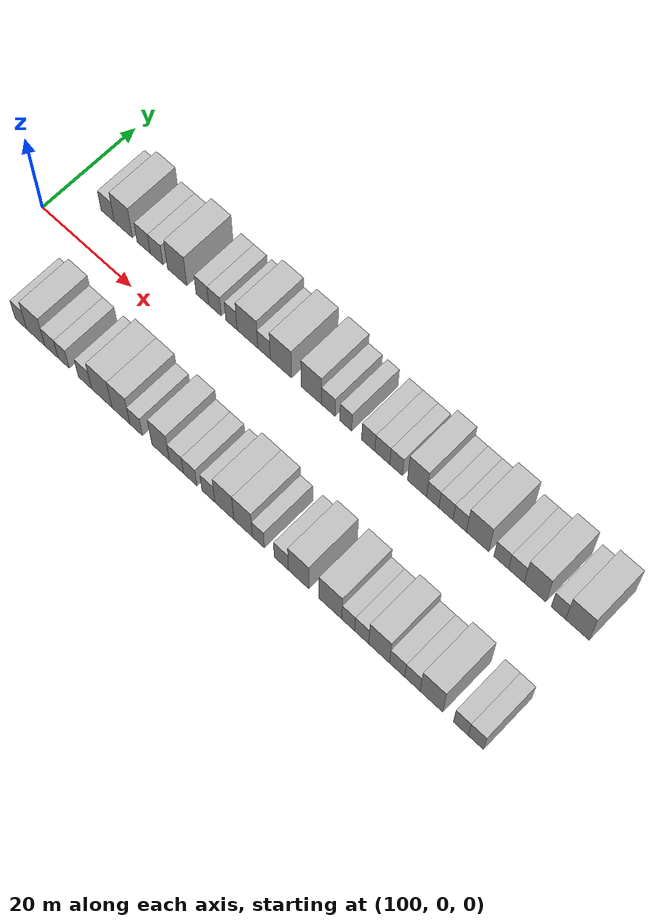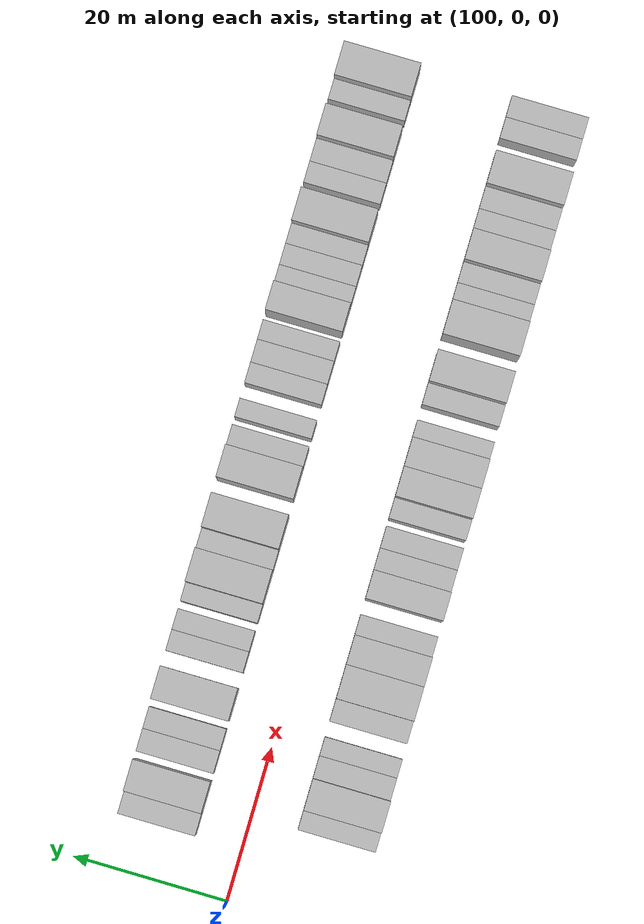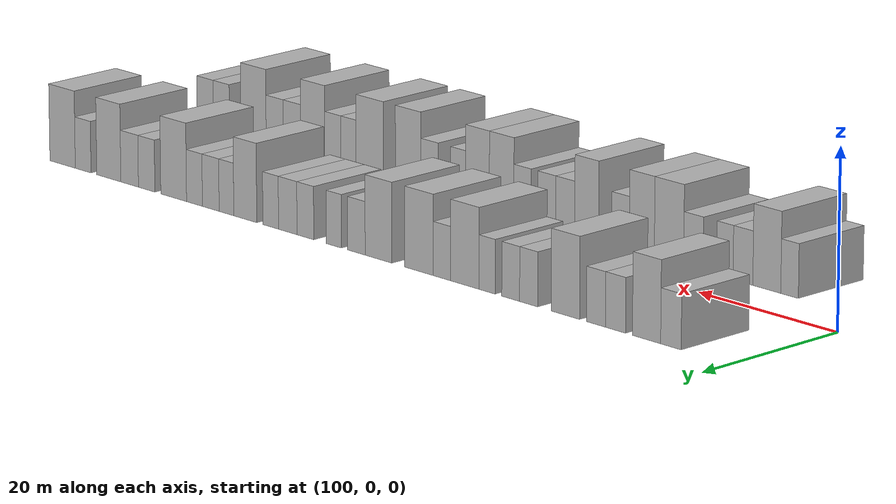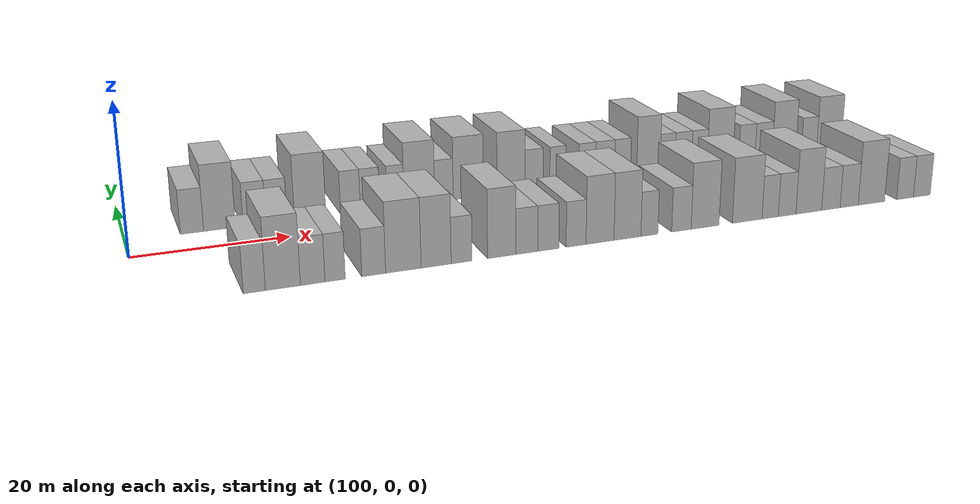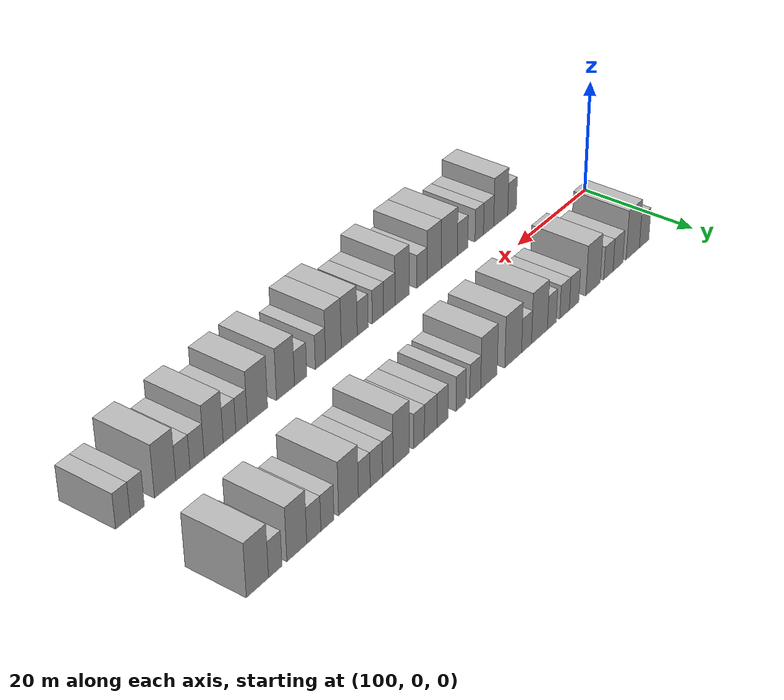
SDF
<sdf version="1.6">
 <world name="default">
  <model name="building_27">
   <static>1</static>
   <pose>108.4140 11.0000 0 0.000000 0.000000 1.570796</pose>
   <link name="link">
    <pose>0 0 3.00 0 0 0</pose>
    <collision name="collision"><geometry><box><size>10.0000 2.9504 6.0000</size></box></geometry></collision>
    <visual name="visual">
     <cast_shadows>0</cast_shadows>
     <geometry><box><size>10.0000 2.9504 6.0000</size></box></geometry>
     <material>
      <script>
       <uri>model://HANNAS_wall/materials/scripts</uri>
       <uri>model://HANNAS_wall/materials/textures</uri>
       <name>vrc/HANNAS_wall</name>
      </script>
     </material>
    </visual>
   </link>
  </model>
  <model name="building_28">
   <static>1</static>
   <pose>111.9314 11.0000 0 0.000000 0.000000 1.570796</pose>
   <link name="link">
    <pose>0 0 4.50 0 0 0</pose>
    <collision name="collision"><geometry><box><size>10.0000 4.0844 9.0000</size></box></geometry></collision>
    <visual name="visual">
     <cast_shadows>0</cast_shadows>
     <geometry><box><size>10.0000 4.0844 9.0000</size></box></geometry>
     <material>
      <script>
       <uri>model://HANNAS_wall/materials/scripts</uri>
       <uri>model://HANNAS_wall/materials/textures</uri>
       <name>vrc/HANNAS_wall</name>
      </script>
     </material>
    </visual>
   </link>
  </model>
  <model name="building_29">
   <static>1</static>
   <pose>116.4413 11.0000 0 0.000000 0.000000 1.570796</pose>
   <link name="link">
    <pose>0 0 3.00 0 0 0</pose>
    <collision name="collision"><geometry><box><size>10.0000 2.9353 6.0000</size></box></geometry></collision>
    <visual name="visual">
     <cast_shadows>0</cast_shadows>
     <geometry><box><size>10.0000 2.9353 6.0000</size></box></geometry>
     <material>
      <script>
       <uri>model://HANNAS_wall/materials/scripts</uri>
       <uri>model://HANNAS_wall/materials/textures</uri>
       <name>vrc/HANNAS_wall</name>
      </script>
     </material>
    </visual>
   </link>
  </model>
  <model name="building_30">
   <static>1</static>
   <pose>119.3154 11.0000 0 0.000000 0.000000 1.570796</pose>
   <link name="link">
    <pose>0 0 3.00 0 0 0</pose>
    <collision name="collision"><geometry><box><size>10.0000 2.8128 6.0000</size></box></geometry></collision>
    <visual name="visual">
     <cast_shadows>0</cast_shadows>
     <geometry><box><size>10.0000 2.8128 6.0000</size></box></geometry>
     <material>
      <script>
       <uri>model://HANNAS_wall/materials/scripts</uri>
       <uri>model://HANNAS_wall/materials/textures</uri>
       <name>vrc/HANNAS_wall</name>
      </script>
     </material>
    </visual>
   </link>
  </model>
  <model name="building_31">
   <static>1</static>
   <pose>123.8374 11.0000 0 0.000000 0.000000 1.570796</pose>
   <link name="link">
    <pose>0 0 4.50 0 0 0</pose>
    <collision name="collision"><geometry><box><size>10.0000 4.2310 9.0000</size></box></geometry></collision>
    <visual name="visual">
     <cast_shadows>0</cast_shadows>
     <geometry><box><size>10.0000 4.2310 9.0000</size></box></geometry>
     <material>
      <script>
       <uri>model://HANNAS_wall/materials/scripts</uri>
       <uri>model://HANNAS_wall/materials/textures</uri>
       <name>vrc/HANNAS_wall</name>
      </script>
     </material>
    </visual>
   </link>
  </model>
  <model name="building_32">
   <static>1</static>
   <pose>129.3143 11.0000 0 0.000000 0.000000 1.570796</pose>
   <link name="link">
    <pose>0 0 3.00 0 0 0</pose>
    <collision name="collision"><geometry><box><size>10.0000 2.7228 6.0000</size></box></geometry></collision>
    <visual name="visual">
     <cast_shadows>0</cast_shadows>
     <geometry><box><size>10.0000 2.7228 6.0000</size></box></geometry>
     <material>
      <script>
       <uri>model://HANNAS_wall/materials/scripts</uri>
       <uri>model://HANNAS_wall/materials/textures</uri>
       <name>vrc/HANNAS_wall</name>
      </script>
     </material>
    </visual>
   </link>
  </model>
  <model name="building_33">
   <static>1</static>
   <pose>132.0238 11.0000 0 0.000000 0.000000 1.570796</pose>
   <link name="link">
    <pose>0 0 3.00 0 0 0</pose>
    <collision name="collision"><geometry><box><size>10.0000 2.6963 6.0000</size></box></geometry></collision>
    <visual name="visual">
     <cast_shadows>0</cast_shadows>
     <geometry><box><size>10.0000 2.6963 6.0000</size></box></geometry>
     <material>
      <script>
       <uri>model://HANNAS_wall/materials/scripts</uri>
       <uri>model://HANNAS_wall/materials/textures</uri>
       <name>vrc/HANNAS_wall</name>
      </script>
     </material>
    </visual>
   </link>
  </model>
  <model name="building_34">
   <static>1</static>
   <pose>135.5827 11.0000 0 0.000000 0.000000 1.570796</pose>
   <link name="link">
    <pose>0 0 3.00 0 0 0</pose>
    <collision name="collision"><geometry><box><size>10.0000 2.4214 6.0000</size></box></geometry></collision>
    <visual name="visual">
     <cast_shadows>0</cast_shadows>
     <geometry><box><size>10.0000 2.4214 6.0000</size></box></geometry>
     <material>
      <script>
       <uri>model://HANNAS_wall/materials/scripts</uri>
       <uri>model://HANNAS_wall/materials/textures</uri>
       <name>vrc/HANNAS_wall</name>
      </script>
     </material>
    </visual>
   </link>
  </model>
  <model name="building_35">
   <static>1</static>
   <pose>138.9774 11.0000 0 0.000000 0.000000 1.570796</pose>
   <link name="link">
    <pose>0 0 4.50 0 0 0</pose>
    <collision name="collision"><geometry><box><size>10.0000 4.3680 9.0000</size></box></geometry></collision>
    <visual name="visual">
     <cast_shadows>0</cast_shadows>
     <geometry><box><size>10.0000 4.3680 9.0000</size></box></geometry>
     <material>
      <script>
       <uri>model://HANNAS_wall/materials/scripts</uri>
       <uri>model://HANNAS_wall/materials/textures</uri>
       <name>vrc/HANNAS_wall</name>
      </script>
     </material>
    </visual>
   </link>
  </model>
  <model name="building_36">
   <static>1</static>
   <pose>142.4994 11.0000 0 0.000000 0.000000 1.570796</pose>
   <link name="link">
    <pose>0 0 3.00 0 0 0</pose>
    <collision name="collision"><geometry><box><size>10.0000 2.6760 6.0000</size></box></geometry></collision>
    <visual name="visual">
     <cast_shadows>0</cast_shadows>
     <geometry><box><size>10.0000 2.6760 6.0000</size></box></geometry>
     <material>
      <script>
       <uri>model://HANNAS_wall/materials/scripts</uri>
       <uri>model://HANNAS_wall/materials/textures</uri>
       <name>vrc/HANNAS_wall</name>
      </script>
     </material>
    </visual>
   </link>
  </model>
  <model name="building_37">
   <static>1</static>
   <pose>146.0599 11.0000 0 0.000000 0.000000 1.570796</pose>
   <link name="link">
    <pose>0 0 4.50 0 0 0</pose>
    <collision name="collision"><geometry><box><size>10.0000 4.4451 9.0000</size></box></geometry></collision>
    <visual name="visual">
     <cast_shadows>0</cast_shadows>
     <geometry><box><size>10.0000 4.4451 9.0000</size></box></geometry>
     <material>
      <script>
       <uri>model://HANNAS_wall/materials/scripts</uri>
       <uri>model://HANNAS_wall/materials/textures</uri>
       <name>vrc/HANNAS_wall</name>
      </script>
     </material>
    </visual>
   </link>
  </model>
  <model name="building_38">
   <static>1</static>
   <pose>152.3890 11.0000 0 0.000000 0.000000 1.570796</pose>
   <link name="link">
    <pose>0 0 4.50 0 0 0</pose>
    <collision name="collision"><geometry><box><size>10.0000 4.2130 9.0000</size></box></geometry></collision>
    <visual name="visual">
     <cast_shadows>0</cast_shadows>
     <geometry><box><size>10.0000 4.2130 9.0000</size></box></geometry>
     <material>
      <script>
       <uri>model://HANNAS_wall/materials/scripts</uri>
       <uri>model://HANNAS_wall/materials/textures</uri>
       <name>vrc/HANNAS_wall</name>
      </script>
     </material>
    </visual>
   </link>
  </model>
  <model name="building_39">
   <static>1</static>
   <pose>155.8825 11.0000 0 0.000000 0.000000 1.570796</pose>
   <link name="link">
    <pose>0 0 3.00 0 0 0</pose>
    <collision name="collision"><geometry><box><size>10.0000 2.7741 6.0000</size></box></geometry></collision>
    <visual name="visual">
     <cast_shadows>0</cast_shadows>
     <geometry><box><size>10.0000 2.7741 6.0000</size></box></geometry>
     <material>
      <script>
       <uri>model://HANNAS_wall/materials/scripts</uri>
       <uri>model://HANNAS_wall/materials/textures</uri>
       <name>vrc/HANNAS_wall</name>
      </script>
     </material>
    </visual>
   </link>
  </model>
  <model name="building_40">
   <static>1</static>
   <pose>159.4782 11.0000 0 0.000000 0.000000 1.570796</pose>
   <link name="link">
    <pose>0 0 3.00 0 0 0</pose>
    <collision name="collision"><geometry><box><size>10.0000 2.4173 6.0000</size></box></geometry></collision>
    <visual name="visual">
     <cast_shadows>0</cast_shadows>
     <geometry><box><size>10.0000 2.4173 6.0000</size></box></geometry>
     <material>
      <script>
       <uri>model://HANNAS_wall/materials/scripts</uri>
       <uri>model://HANNAS_wall/materials/textures</uri>
       <name>vrc/HANNAS_wall</name>
      </script>
     </material>
    </visual>
   </link>
  </model>
  <model name="building_41">
   <static>1</static>
   <pose>164.0382 11.0000 0 0.000000 0.000000 1.570796</pose>
   <link name="link">
    <pose>0 0 3.00 0 0 0</pose>
    <collision name="collision"><geometry><box><size>10.0000 2.7027 6.0000</size></box></geometry></collision>
    <visual name="visual">
     <cast_shadows>0</cast_shadows>
     <geometry><box><size>10.0000 2.7027 6.0000</size></box></geometry>
     <material>
      <script>
       <uri>model://HANNAS_wall/materials/scripts</uri>
       <uri>model://HANNAS_wall/materials/textures</uri>
       <name>vrc/HANNAS_wall</name>
      </script>
     </material>
    </visual>
   </link>
  </model>
  <model name="building_42">
   <static>1</static>
   <pose>166.8856 11.0000 0 0.000000 0.000000 1.570796</pose>
   <link name="link">
    <pose>0 0 3.00 0 0 0</pose>
    <collision name="collision"><geometry><box><size>10.0000 2.9921 6.0000</size></box></geometry></collision>
    <visual name="visual">
     <cast_shadows>0</cast_shadows>
     <geometry><box><size>10.0000 2.9921 6.0000</size></box></geometry>
     <material>
      <script>
       <uri>model://HANNAS_wall/materials/scripts</uri>
       <uri>model://HANNAS_wall/materials/textures</uri>
       <name>vrc/HANNAS_wall</name>
      </script>
     </material>
    </visual>
   </link>
  </model>
  <model name="building_43">
   <static>1</static>
   <pose>169.6561 11.0000 0 0.000000 0.000000 1.570796</pose>
   <link name="link">
    <pose>0 0 3.00 0 0 0</pose>
    <collision name="collision"><geometry><box><size>10.0000 2.5487 6.0000</size></box></geometry></collision>
    <visual name="visual">
     <cast_shadows>0</cast_shadows>
     <geometry><box><size>10.0000 2.5487 6.0000</size></box></geometry>
     <material>
      <script>
       <uri>model://HANNAS_wall/materials/scripts</uri>
       <uri>model://HANNAS_wall/materials/textures</uri>
       <name>vrc/HANNAS_wall</name>
      </script>
     </material>
    </visual>
   </link>
  </model>
  <model name="building_44">
   <static>1</static>
   <pose>173.8163 11.0000 0 0.000000 0.000000 1.570796</pose>
   <link name="link">
    <pose>0 0 4.50 0 0 0</pose>
    <collision name="collision"><geometry><box><size>10.0000 3.7718 9.0000</size></box></geometry></collision>
    <visual name="visual">
     <cast_shadows>0</cast_shadows>
     <geometry><box><size>10.0000 3.7718 9.0000</size></box></geometry>
     <material>
      <script>
       <uri>model://HANNAS_wall/materials/scripts</uri>
       <uri>model://HANNAS_wall/materials/textures</uri>
       <name>vrc/HANNAS_wall</name>
      </script>
     </material>
    </visual>
   </link>
  </model>
  <model name="building_45">
   <static>1</static>
   <pose>176.9145 11.0000 0 0.000000 0.000000 1.570796</pose>
   <link name="link">
    <pose>0 0 3.00 0 0 0</pose>
    <collision name="collision"><geometry><box><size>10.0000 2.4245 6.0000</size></box></geometry></collision>
    <visual name="visual">
     <cast_shadows>0</cast_shadows>
     <geometry><box><size>10.0000 2.4245 6.0000</size></box></geometry>
     <material>
      <script>
       <uri>model://HANNAS_wall/materials/scripts</uri>
       <uri>model://HANNAS_wall/materials/textures</uri>
       <name>vrc/HANNAS_wall</name>
      </script>
     </material>
    </visual>
   </link>
  </model>
  <model name="building_46">
   <static>1</static>
   <pose>179.5156 11.0000 0 0.000000 0.000000 1.570796</pose>
   <link name="link">
    <pose>0 0 3.00 0 0 0</pose>
    <collision name="collision"><geometry><box><size>10.0000 2.7777 6.0000</size></box></geometry></collision>
    <visual name="visual">
     <cast_shadows>0</cast_shadows>
     <geometry><box><size>10.0000 2.7777 6.0000</size></box></geometry>
     <material>
      <script>
       <uri>model://HANNAS_wall/materials/scripts</uri>
       <uri>model://HANNAS_wall/materials/textures</uri>
       <name>vrc/HANNAS_wall</name>
      </script>
     </material>
    </visual>
   </link>
  </model>
  <model name="building_47">
   <static>1</static>
   <pose>182.2284 11.0000 0 0.000000 0.000000 1.570796</pose>
   <link name="link">
    <pose>0 0 3.00 0 0 0</pose>
    <collision name="collision"><geometry><box><size>10.0000 2.6479 6.0000</size></box></geometry></collision>
    <visual name="visual">
     <cast_shadows>0</cast_shadows>
     <geometry><box><size>10.0000 2.6479 6.0000</size></box></geometry>
     <material>
      <script>
       <uri>model://HANNAS_wall/materials/scripts</uri>
       <uri>model://HANNAS_wall/materials/textures</uri>
       <name>vrc/HANNAS_wall</name>
      </script>
     </material>
    </visual>
   </link>
  </model>
  <model name="building_48">
   <static>1</static>
   <pose>185.7171 11.0000 0 0.000000 0.000000 1.570796</pose>
   <link name="link">
    <pose>0 0 4.50 0 0 0</pose>
    <collision name="collision"><geometry><box><size>10.0000 4.3294 9.0000</size></box></geometry></collision>
    <visual name="visual">
     <cast_shadows>0</cast_shadows>
     <geometry><box><size>10.0000 4.3294 9.0000</size></box></geometry>
     <material>
      <script>
       <uri>model://HANNAS_wall/materials/scripts</uri>
       <uri>model://HANNAS_wall/materials/textures</uri>
       <name>vrc/HANNAS_wall</name>
      </script>
     </material>
    </visual>
   </link>
  </model>
  <model name="building_49">
   <static>1</static>
   <pose>190.2763 11.0000 0 0.000000 0.000000 1.570796</pose>
   <link name="link">
    <pose>0 0 3.00 0 0 0</pose>
    <collision name="collision"><geometry><box><size>10.0000 2.7891 6.0000</size></box></geometry></collision>
    <visual name="visual">
     <cast_shadows>0</cast_shadows>
     <geometry><box><size>10.0000 2.7891 6.0000</size></box></geometry>
     <material>
      <script>
       <uri>model://HANNAS_wall/materials/scripts</uri>
       <uri>model://HANNAS_wall/materials/textures</uri>
       <name>vrc/HANNAS_wall</name>
      </script>
     </material>
    </visual>
   </link>
  </model>
  <model name="building_50">
   <static>1</static>
   <pose>193.1700 11.0000 0 0.000000 0.000000 1.570796</pose>
   <link name="link">
    <pose>0 0 3.00 0 0 0</pose>
    <collision name="collision"><geometry><box><size>10.0000 2.9982 6.0000</size></box></geometry></collision>
    <visual name="visual">
     <cast_shadows>0</cast_shadows>
     <geometry><box><size>10.0000 2.9982 6.0000</size></box></geometry>
     <material>
      <script>
       <uri>model://HANNAS_wall/materials/scripts</uri>
       <uri>model://HANNAS_wall/materials/textures</uri>
       <name>vrc/HANNAS_wall</name>
      </script>
     </material>
    </visual>
   </link>
  </model>
  <model name="building_51">
   <static>1</static>
   <pose>196.7343 11.0000 0 0.000000 0.000000 1.570796</pose>
   <link name="link">
    <pose>0 0 4.50 0 0 0</pose>
    <collision name="collision"><geometry><box><size>10.0000 4.1304 9.0000</size></box></geometry></collision>
    <visual name="visual">
     <cast_shadows>0</cast_shadows>
     <geometry><box><size>10.0000 4.1304 9.0000</size></box></geometry>
     <material>
      <script>
       <uri>model://HANNAS_wall/materials/scripts</uri>
       <uri>model://HANNAS_wall/materials/textures</uri>
       <name>vrc/HANNAS_wall</name>
      </script>
     </material>
    </visual>
   </link>
  </model>
  <model name="building_52">
   <static>1</static>
   <pose>201.1577 11.0000 0 0.000000 0.000000 1.570796</pose>
   <link name="link">
    <pose>0 0 3.00 0 0 0</pose>
    <collision name="collision"><geometry><box><size>10.0000 2.7166 6.0000</size></box></geometry></collision>
    <visual name="visual">
     <cast_shadows>0</cast_shadows>
     <geometry><box><size>10.0000 2.7166 6.0000</size></box></geometry>
     <material>
      <script>
       <uri>model://HANNAS_wall/materials/scripts</uri>
       <uri>model://HANNAS_wall/materials/textures</uri>
       <name>vrc/HANNAS_wall</name>
      </script>
     </material>
    </visual>
   </link>
  </model>
  <model name="building_53">
   <static>1</static>
   <pose>204.7273 11.0000 0 0.000000 0.000000 1.570796</pose>
   <link name="link">
    <pose>0 0 4.50 0 0 0</pose>
    <collision name="collision"><geometry><box><size>10.0000 4.4226 9.0000</size></box></geometry></collision>
    <visual name="visual">
     <cast_shadows>0</cast_shadows>
     <geometry><box><size>10.0000 4.4226 9.0000</size></box></geometry>
     <material>
      <script>
       <uri>model://HANNAS_wall/materials/scripts</uri>
       <uri>model://HANNAS_wall/materials/textures</uri>
       <name>vrc/HANNAS_wall</name>
      </script>
     </material>
    </visual>
   </link>
  </model>
  <model name="building_81">
   <static>1</static>
   <pose>112.5457 -11.0000 0 0.000000 0.000000 1.570796</pose>
   <link name="link">
    <pose>0 0 3.00 0 0 0</pose>
    <collision name="collision"><geometry><box><size>10.0000 2.5510 6.0000</size></box></geometry></collision>
    <visual name="visual">
     <cast_shadows>0</cast_shadows>
     <geometry><box><size>10.0000 2.5510 6.0000</size></box></geometry>
     <material>
      <script>
       <uri>model://HANNAS_wall/materials/scripts</uri>
       <uri>model://HANNAS_wall/materials/textures</uri>
       <name>vrc/HANNAS_wall</name>
      </script>
     </material>
    </visual>
   </link>
  </model>
  <model name="building_82">
   <static>1</static>
   <pose>115.8609 -11.0000 0 0.000000 0.000000 1.570796</pose>
   <link name="link">
    <pose>0 0 4.50 0 0 0</pose>
    <collision name="collision"><geometry><box><size>10.0000 4.0794 9.0000</size></box></geometry></collision>
    <visual name="visual">
     <cast_shadows>0</cast_shadows>
     <geometry><box><size>10.0000 4.0794 9.0000</size></box></geometry>
     <material>
      <script>
       <uri>model://HANNAS_wall/materials/scripts</uri>
       <uri>model://HANNAS_wall/materials/textures</uri>
       <name>vrc/HANNAS_wall</name>
      </script>
     </material>
    </visual>
   </link>
  </model>
  <model name="building_83">
   <static>1</static>
   <pose>119.3549 -11.0000 0 0.000000 0.000000 1.570796</pose>
   <link name="link">
    <pose>0 0 3.00 0 0 0</pose>
    <collision name="collision"><geometry><box><size>10.0000 2.9087 6.0000</size></box></geometry></collision>
    <visual name="visual">
     <cast_shadows>0</cast_shadows>
     <geometry><box><size>10.0000 2.9087 6.0000</size></box></geometry>
     <material>
      <script>
       <uri>model://HANNAS_wall/materials/scripts</uri>
       <uri>model://HANNAS_wall/materials/textures</uri>
       <name>vrc/HANNAS_wall</name>
      </script>
     </material>
    </visual>
   </link>
  </model>
  <model name="building_84">
   <static>1</static>
   <pose>122.0211 -11.0000 0 0.000000 0.000000 1.570796</pose>
   <link name="link">
    <pose>0 0 3.00 0 0 0</pose>
    <collision name="collision"><geometry><box><size>10.0000 2.4236 6.0000</size></box></geometry></collision>
    <visual name="visual">
     <cast_shadows>0</cast_shadows>
     <geometry><box><size>10.0000 2.4236 6.0000</size></box></geometry>
     <material>
      <script>
       <uri>model://HANNAS_wall/materials/scripts</uri>
       <uri>model://HANNAS_wall/materials/textures</uri>
       <name>vrc/HANNAS_wall</name>
      </script>
     </material>
    </visual>
   </link>
  </model>
  <model name="building_85">
   <static>1</static>
   <pose>126.6897 -11.0000 0 0.000000 0.000000 1.570796</pose>
   <link name="link">
    <pose>0 0 3.00 0 0 0</pose>
    <collision name="collision"><geometry><box><size>10.0000 2.9137 6.0000</size></box></geometry></collision>
    <visual name="visual">
     <cast_shadows>0</cast_shadows>
     <geometry><box><size>10.0000 2.9137 6.0000</size></box></geometry>
     <material>
      <script>
       <uri>model://HANNAS_wall/materials/scripts</uri>
       <uri>model://HANNAS_wall/materials/textures</uri>
       <name>vrc/HANNAS_wall</name>
      </script>
     </material>
    </visual>
   </link>
  </model>
  <model name="building_86">
   <static>1</static>
   <pose>130.3474 -11.0000 0 0.000000 0.000000 1.570796</pose>
   <link name="link">
    <pose>0 0 4.50 0 0 0</pose>
    <collision name="collision"><geometry><box><size>10.0000 4.4017 9.0000</size></box></geometry></collision>
    <visual name="visual">
     <cast_shadows>0</cast_shadows>
     <geometry><box><size>10.0000 4.4017 9.0000</size></box></geometry>
     <material>
      <script>
       <uri>model://HANNAS_wall/materials/scripts</uri>
       <uri>model://HANNAS_wall/materials/textures</uri>
       <name>vrc/HANNAS_wall</name>
      </script>
     </material>
    </visual>
   </link>
  </model>
  <model name="building_87">
   <static>1</static>
   <pose>134.4501 -11.0000 0 0.000000 0.000000 1.570796</pose>
   <link name="link">
    <pose>0 0 4.50 0 0 0</pose>
    <collision name="collision"><geometry><box><size>10.0000 3.8037 9.0000</size></box></geometry></collision>
    <visual name="visual">
     <cast_shadows>0</cast_shadows>
     <geometry><box><size>10.0000 3.8037 9.0000</size></box></geometry>
     <material>
      <script>
       <uri>model://HANNAS_wall/materials/scripts</uri>
       <uri>model://HANNAS_wall/materials/textures</uri>
       <name>vrc/HANNAS_wall</name>
      </script>
     </material>
    </visual>
   </link>
  </model>
  <model name="building_88">
   <static>1</static>
   <pose>137.6919 -11.0000 0 0.000000 0.000000 1.570796</pose>
   <link name="link">
    <pose>0 0 3.00 0 0 0</pose>
    <collision name="collision"><geometry><box><size>10.0000 2.6800 6.0000</size></box></geometry></collision>
    <visual name="visual">
     <cast_shadows>0</cast_shadows>
     <geometry><box><size>10.0000 2.6800 6.0000</size></box></geometry>
     <material>
      <script>
       <uri>model://HANNAS_wall/materials/scripts</uri>
       <uri>model://HANNAS_wall/materials/textures</uri>
       <name>vrc/HANNAS_wall</name>
      </script>
     </material>
    </visual>
   </link>
  </model>
  <model name="building_89">
   <static>1</static>
   <pose>142.8759 -11.0000 0 0.000000 0.000000 1.570796</pose>
   <link name="link">
    <pose>0 0 4.50 0 0 0</pose>
    <collision name="collision"><geometry><box><size>10.0000 3.6879 9.0000</size></box></geometry></collision>
    <visual name="visual">
     <cast_shadows>0</cast_shadows>
     <geometry><box><size>10.0000 3.6879 9.0000</size></box></geometry>
     <material>
      <script>
       <uri>model://HANNAS_wall/materials/scripts</uri>
       <uri>model://HANNAS_wall/materials/textures</uri>
       <name>vrc/HANNAS_wall</name>
      </script>
     </material>
    </visual>
   </link>
  </model>
  <model name="building_90">
   <static>1</static>
   <pose>146.1892 -11.0000 0 0.000000 0.000000 1.570796</pose>
   <link name="link">
    <pose>0 0 3.00 0 0 0</pose>
    <collision name="collision"><geometry><box><size>10.0000 2.9388 6.0000</size></box></geometry></collision>
    <visual name="visual">
     <cast_shadows>0</cast_shadows>
     <geometry><box><size>10.0000 2.9388 6.0000</size></box></geometry>
     <material>
      <script>
       <uri>model://HANNAS_wall/materials/scripts</uri>
       <uri>model://HANNAS_wall/materials/textures</uri>
       <name>vrc/HANNAS_wall</name>
      </script>
     </material>
    </visual>
   </link>
  </model>
  <model name="building_91">
   <static>1</static>
   <pose>149.0767 -11.0000 0 0.000000 0.000000 1.570796</pose>
   <link name="link">
    <pose>0 0 3.00 0 0 0</pose>
    <collision name="collision"><geometry><box><size>10.0000 2.8361 6.0000</size></box></geometry></collision>
    <visual name="visual">
     <cast_shadows>0</cast_shadows>
     <geometry><box><size>10.0000 2.8361 6.0000</size></box></geometry>
     <material>
      <script>
       <uri>model://HANNAS_wall/materials/scripts</uri>
       <uri>model://HANNAS_wall/materials/textures</uri>
       <name>vrc/HANNAS_wall</name>
      </script>
     </material>
    </visual>
   </link>
  </model>
  <model name="building_92">
   <static>1</static>
   <pose>152.8534 -11.0000 0 0.000000 0.000000 1.570796</pose>
   <link name="link">
    <pose>0 0 3.00 0 0 0</pose>
    <collision name="collision"><geometry><box><size>10.0000 2.7173 6.0000</size></box></geometry></collision>
    <visual name="visual">
     <cast_shadows>0</cast_shadows>
     <geometry><box><size>10.0000 2.7173 6.0000</size></box></geometry>
     <material>
      <script>
       <uri>model://HANNAS_wall/materials/scripts</uri>
       <uri>model://HANNAS_wall/materials/textures</uri>
       <name>vrc/HANNAS_wall</name>
      </script>
     </material>
    </visual>
   </link>
  </model>
  <model name="building_93">
   <static>1</static>
   <pose>156.1543 -11.0000 0 0.000000 0.000000 1.570796</pose>
   <link name="link">
    <pose>0 0 4.50 0 0 0</pose>
    <collision name="collision"><geometry><box><size>10.0000 3.8845 9.0000</size></box></geometry></collision>
    <visual name="visual">
     <cast_shadows>0</cast_shadows>
     <geometry><box><size>10.0000 3.8845 9.0000</size></box></geometry>
     <material>
      <script>
       <uri>model://HANNAS_wall/materials/scripts</uri>
       <uri>model://HANNAS_wall/materials/textures</uri>
       <name>vrc/HANNAS_wall</name>
      </script>
     </material>
    </visual>
   </link>
  </model>
  <model name="building_94">
   <static>1</static>
   <pose>159.9861 -11.0000 0 0.000000 0.000000 1.570796</pose>
   <link name="link">
    <pose>0 0 4.50 0 0 0</pose>
    <collision name="collision"><geometry><box><size>10.0000 3.7790 9.0000</size></box></geometry></collision>
    <visual name="visual">
     <cast_shadows>0</cast_shadows>
     <geometry><box><size>10.0000 3.7790 9.0000</size></box></geometry>
     <material>
      <script>
       <uri>model://HANNAS_wall/materials/scripts</uri>
       <uri>model://HANNAS_wall/materials/textures</uri>
       <name>vrc/HANNAS_wall</name>
      </script>
     </material>
    </visual>
   </link>
  </model>
  <model name="building_95">
   <static>1</static>
   <pose>163.0801 -11.0000 0 0.000000 0.000000 1.570796</pose>
   <link name="link">
    <pose>0 0 3.00 0 0 0</pose>
    <collision name="collision"><geometry><box><size>10.0000 2.4090 6.0000</size></box></geometry></collision>
    <visual name="visual">
     <cast_shadows>0</cast_shadows>
     <geometry><box><size>10.0000 2.4090 6.0000</size></box></geometry>
     <material>
      <script>
       <uri>model://HANNAS_wall/materials/scripts</uri>
       <uri>model://HANNAS_wall/materials/textures</uri>
       <name>vrc/HANNAS_wall</name>
      </script>
     </material>
    </visual>
   </link>
  </model>
  <model name="building_96">
   <static>1</static>
   <pose>167.7027 -11.0000 0 0.000000 0.000000 1.570796</pose>
   <link name="link">
    <pose>0 0 3.00 0 0 0</pose>
    <collision name="collision"><geometry><box><size>10.0000 2.8364 6.0000</size></box></geometry></collision>
    <visual name="visual">
     <cast_shadows>0</cast_shadows>
     <geometry><box><size>10.0000 2.8364 6.0000</size></box></geometry>
     <material>
      <script>
       <uri>model://HANNAS_wall/materials/scripts</uri>
       <uri>model://HANNAS_wall/materials/textures</uri>
       <name>vrc/HANNAS_wall</name>
      </script>
     </material>
    </visual>
   </link>
  </model>
  <model name="building_97">
   <static>1</static>
   <pose>171.1713 -11.0000 0 0.000000 0.000000 1.570796</pose>
   <link name="link">
    <pose>0 0 4.50 0 0 0</pose>
    <collision name="collision"><geometry><box><size>10.0000 4.1007 9.0000</size></box></geometry></collision>
    <visual name="visual">
     <cast_shadows>0</cast_shadows>
     <geometry><box><size>10.0000 4.1007 9.0000</size></box></geometry>
     <material>
      <script>
       <uri>model://HANNAS_wall/materials/scripts</uri>
       <uri>model://HANNAS_wall/materials/textures</uri>
       <name>vrc/HANNAS_wall</name>
      </script>
     </material>
    </visual>
   </link>
  </model>
  <model name="building_98">
   <static>1</static>
   <pose>177.4633 -11.0000 0 0.000000 0.000000 1.570796</pose>
   <link name="link">
    <pose>0 0 4.50 0 0 0</pose>
    <collision name="collision"><geometry><box><size>10.0000 4.4834 9.0000</size></box></geometry></collision>
    <visual name="visual">
     <cast_shadows>0</cast_shadows>
     <geometry><box><size>10.0000 4.4834 9.0000</size></box></geometry>
     <material>
      <script>
       <uri>model://HANNAS_wall/materials/scripts</uri>
       <uri>model://HANNAS_wall/materials/textures</uri>
       <name>vrc/HANNAS_wall</name>
      </script>
     </material>
    </visual>
   </link>
  </model>
  <model name="building_99">
   <static>1</static>
   <pose>180.9535 -11.0000 0 0.000000 0.000000 1.570796</pose>
   <link name="link">
    <pose>0 0 3.00 0 0 0</pose>
    <collision name="collision"><geometry><box><size>10.0000 2.4968 6.0000</size></box></geometry></collision>
    <visual name="visual">
     <cast_shadows>0</cast_shadows>
     <geometry><box><size>10.0000 2.4968 6.0000</size></box></geometry>
     <material>
      <script>
       <uri>model://HANNAS_wall/materials/scripts</uri>
       <uri>model://HANNAS_wall/materials/textures</uri>
       <name>vrc/HANNAS_wall</name>
      </script>
     </material>
    </visual>
   </link>
  </model>
  <model name="building_100">
   <static>1</static>
   <pose>183.5623 -11.0000 0 0.000000 0.000000 1.570796</pose>
   <link name="link">
    <pose>0 0 3.00 0 0 0</pose>
    <collision name="collision"><geometry><box><size>10.0000 2.7208 6.0000</size></box></geometry></collision>
    <visual name="visual">
     <cast_shadows>0</cast_shadows>
     <geometry><box><size>10.0000 2.7208 6.0000</size></box></geometry>
     <material>
      <script>
       <uri>model://HANNAS_wall/materials/scripts</uri>
       <uri>model://HANNAS_wall/materials/textures</uri>
       <name>vrc/HANNAS_wall</name>
      </script>
     </material>
    </visual>
   </link>
  </model>
  <model name="building_101">
   <static>1</static>
   <pose>186.9415 -11.0000 0 0.000000 0.000000 1.570796</pose>
   <link name="link">
    <pose>0 0 4.50 0 0 0</pose>
    <collision name="collision"><geometry><box><size>10.0000 4.0377 9.0000</size></box></geometry></collision>
    <visual name="visual">
     <cast_shadows>0</cast_shadows>
     <geometry><box><size>10.0000 4.0377 9.0000</size></box></geometry>
     <material>
      <script>
       <uri>model://HANNAS_wall/materials/scripts</uri>
       <uri>model://HANNAS_wall/materials/textures</uri>
       <name>vrc/HANNAS_wall</name>
      </script>
     </material>
    </visual>
   </link>
  </model>
  <model name="building_102">
   <static>1</static>
   <pose>190.4246 -11.0000 0 0.000000 0.000000 1.570796</pose>
   <link name="link">
    <pose>0 0 3.00 0 0 0</pose>
    <collision name="collision"><geometry><box><size>10.0000 2.9287 6.0000</size></box></geometry></collision>
    <visual name="visual">
     <cast_shadows>0</cast_shadows>
     <geometry><box><size>10.0000 2.9287 6.0000</size></box></geometry>
     <material>
      <script>
       <uri>model://HANNAS_wall/materials/scripts</uri>
       <uri>model://HANNAS_wall/materials/textures</uri>
       <name>vrc/HANNAS_wall</name>
      </script>
     </material>
    </visual>
   </link>
  </model>
  <model name="building_103">
   <static>1</static>
   <pose>193.3490 -11.0000 0 0.000000 0.000000 1.570796</pose>
   <link name="link">
    <pose>0 0 3.00 0 0 0</pose>
    <collision name="collision"><geometry><box><size>10.0000 2.9200 6.0000</size></box></geometry></collision>
    <visual name="visual">
     <cast_shadows>0</cast_shadows>
     <geometry><box><size>10.0000 2.9200 6.0000</size></box></geometry>
     <material>
      <script>
       <uri>model://HANNAS_wall/materials/scripts</uri>
       <uri>model://HANNAS_wall/materials/textures</uri>
       <name>vrc/HANNAS_wall</name>
      </script>
     </material>
    </visual>
   </link>
  </model>
  <model name="building_104">
   <static>1</static>
   <pose>196.9571 -11.0000 0 0.000000 0.000000 1.570796</pose>
   <link name="link">
    <pose>0 0 4.50 0 0 0</pose>
    <collision name="collision"><geometry><box><size>10.0000 4.2964 9.0000</size></box></geometry></collision>
    <visual name="visual">
     <cast_shadows>0</cast_shadows>
     <geometry><box><size>10.0000 4.2964 9.0000</size></box></geometry>
     <material>
      <script>
       <uri>model://HANNAS_wall/materials/scripts</uri>
       <uri>model://HANNAS_wall/materials/textures</uri>
       <name>vrc/HANNAS_wall</name>
      </script>
     </material>
    </visual>
   </link>
  </model>
  <model name="building_105">
   <static>1</static>
   <pose>202.4948 -11.0000 0 0.000000 0.000000 1.570796</pose>
   <link name="link">
    <pose>0 0 3.00 0 0 0</pose>
    <collision name="collision"><geometry><box><size>10.0000 2.7790 6.0000</size></box></geometry></collision>
    <visual name="visual">
     <cast_shadows>0</cast_shadows>
     <geometry><box><size>10.0000 2.7790 6.0000</size></box></geometry>
     <material>
      <script>
       <uri>model://HANNAS_wall/materials/scripts</uri>
       <uri>model://HANNAS_wall/materials/textures</uri>
       <name>vrc/HANNAS_wall</name>
      </script>
     </material>
    </visual>
   </link>
  </model>
  <model name="building_106">
   <static>1</static>
   <pose>205.2985 -11.0000 0 0.000000 0.000000 1.570796</pose>
   <link name="link">
    <pose>0 0 3.00 0 0 0</pose>
    <collision name="collision"><geometry><box><size>10.0000 2.8283 6.0000</size></box></geometry></collision>
    <visual name="visual">
     <cast_shadows>0</cast_shadows>
     <geometry><box><size>10.0000 2.8283 6.0000</size></box></geometry>
     <material>
      <script>
       <uri>model://HANNAS_wall/materials/scripts</uri>
       <uri>model://HANNAS_wall/materials/textures</uri>
       <name>vrc/HANNAS_wall</name>
      </script>
     </material>
    </visual>
   </link>
  </model>
 </world>
</sdf>
